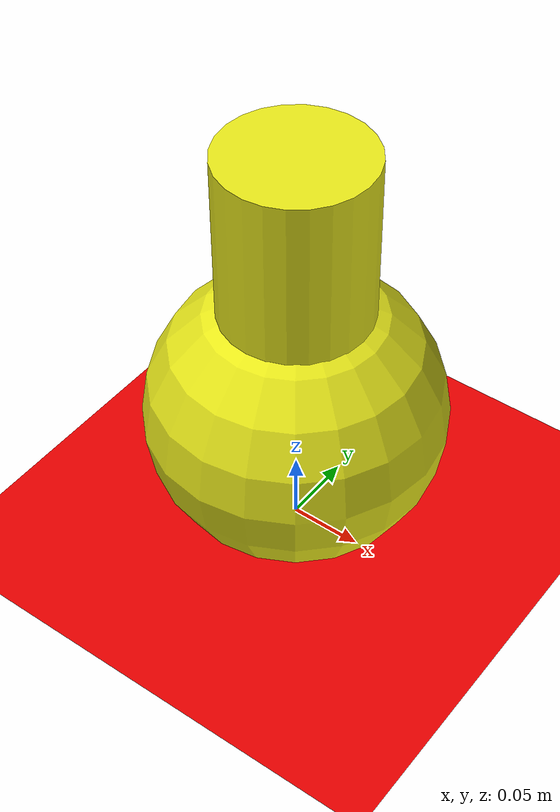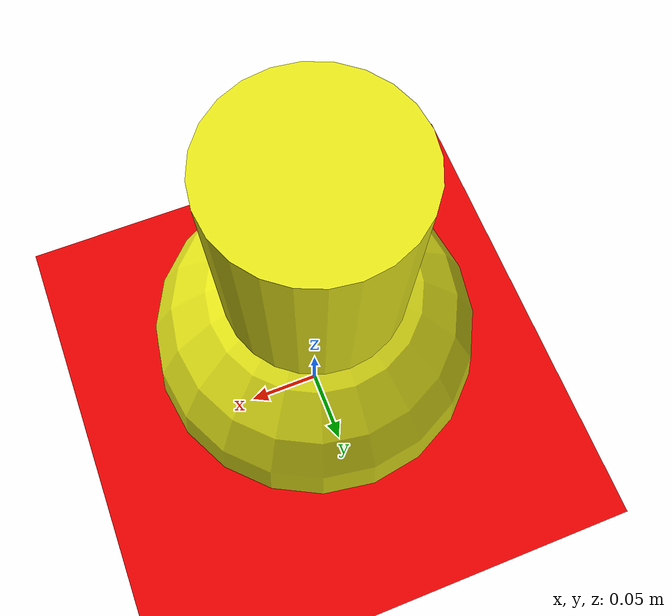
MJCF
<mujoco>
  <worldbody>
    <geom type="plane" size="1 1 0.1" rgba=".9 0 0 1"/>
    <body pos="0 0 0.1">
      <geom type="sphere" pos="0 0 0" size=".1" rgba=".9 .9 .1 1"/>
      <geom type="cylinder" pos="0 0 0.1" size=".05 .1" rgba=".9 .9 .1 1"/>
      <joint type="free"/>
    </body>
  </worldbody>
</mujoco>
